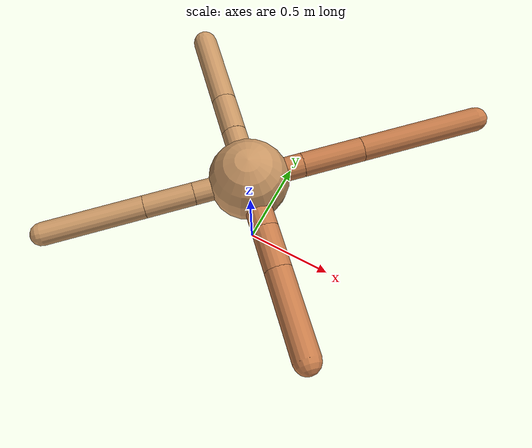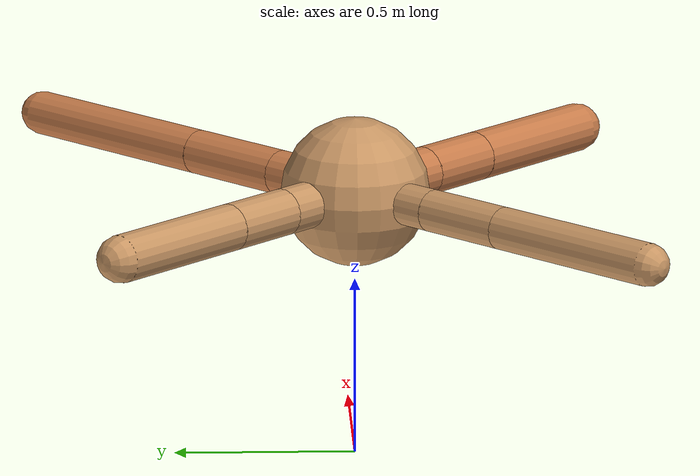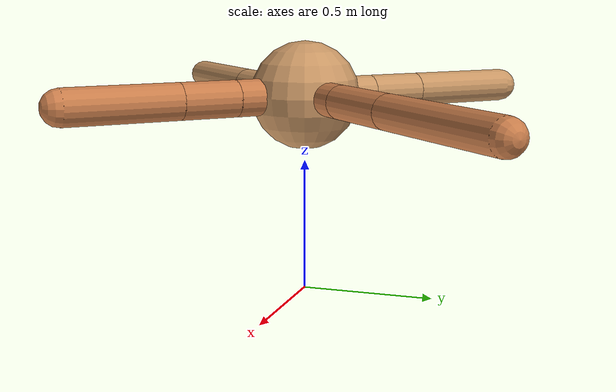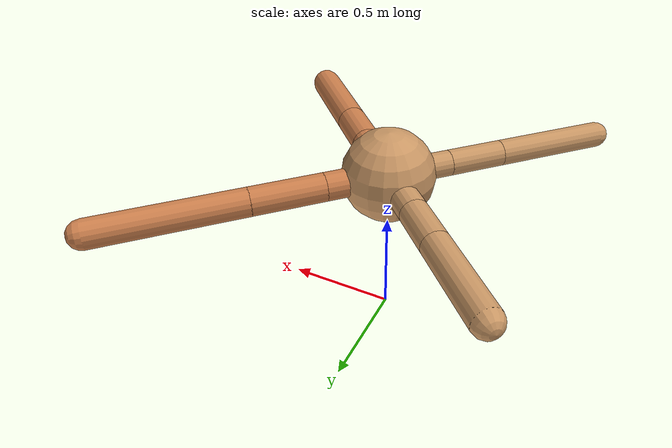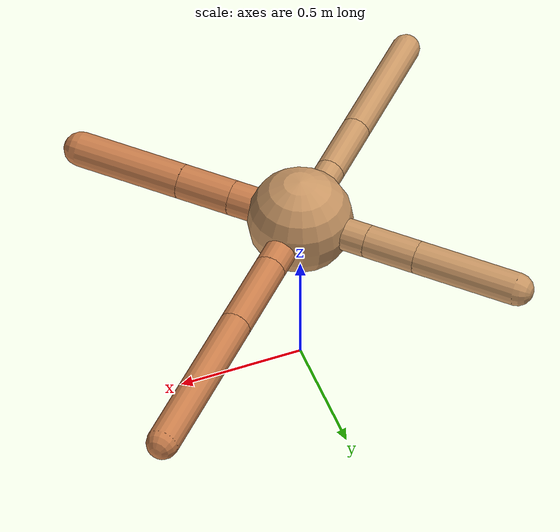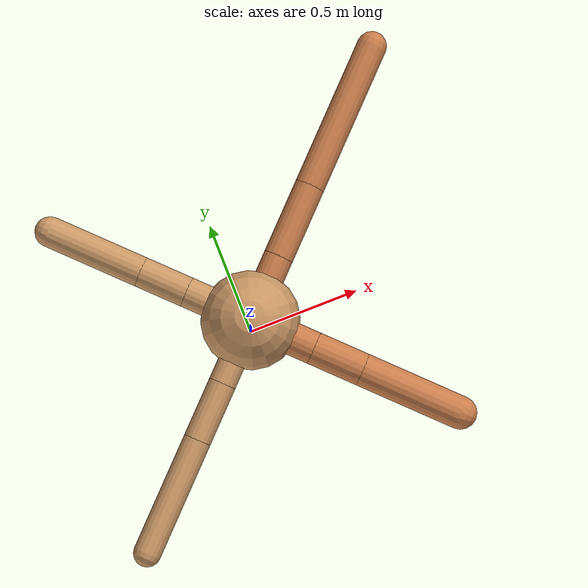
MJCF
<?xml version="1.0" ?>
<mujoco model="ant">

	<compiler angle="degree" coordinate="local" inertiafromgeom="true"/>

	<option integrator="RK4" timestep="0.01"/>

	<custom>

		<numeric data="0.0 0.0 0.55 1.0 0.0 0.0 0.0 0.0 1.0 0.0 -1.0 0.0 -1.0 0.0 1.0" name="init_qpos"/>

	</custom>

	<default>

		<joint armature="1" damping="1" limited="true"/>

		<geom conaffinity="0" condim="3" density="5.0" friction="1.5 0.1 0.1" margin="0.01" rgba="0.8 0.6 0.4 1"/>

	</default>

	<worldbody>

		<body name="torso" pos="0 0 0.75">

			<geom name="torso_geom" pos="0 0 0" size="0.20423514452338165" type="sphere"/>

			<!--joint armature="0" damping="0" limited="false" margin="0.01" name="root" pos="0 0 0" type="free"/-->

			<body name="front_left_leg" pos="0 0 0">

				<geom fromto="0 0 0 0.2 0.2 0" name="aux_1_geom" size="0.062073718661820626" type="capsule" rgba=".8 .5 .3 1"/>

				<body name="aux_1" pos="0.2 0.2 0">

					<joint axis="0 0 1" name="hip_1" pos="0.0 0.0 0.0" range="-40 40" type="hinge"/>

					<geom fromto="0 0 0 0.22439775933122671 0.22439775933122671 0" name="left_leg_geom" size="0.062073718661820626" type="capsule" rgba=".8 .5 .3 1"/>

					<body pos="0.22439775933122671 0.22439775933122671 0" name="front_left_foot">

						<joint axis="-1 1 0" name="ankle_1" pos="0.0 0.0 0.0" range="30 100" type="hinge"/>

						<geom fromto="0 0 0 0.44879551866245343 0.44879551866245343 0" name="left_ankle_geom" size="0.062073718661820626" type="capsule" rgba=".8 .5 .3 1"/>

					</body>

				</body>

			</body>

			<body name="front_right_leg" pos="0 0 0">

				<geom fromto="0 0 0 -0.2 0.2 0" name="aux_2_geom" size="0.06350963102792603" type="capsule"/>

				<body name="aux_2" pos="-0.2 0.2 0">

					<joint axis="0 0 1" name="hip_2" pos="0.0 0.0 0.0" range="-40 40" type="hinge"/>

					<geom fromto="0 0 0 -0.14449353251523936 0.14449353251523936 0" name="right_leg_geom" size="0.06350963102792603" type="capsule"/>

					<body pos="-0.14449353251523936 0.14449353251523936 0" name="front_right_foot">

						<joint axis="1 1 0" name="ankle_2" pos="0.0 0.0 0.0" range="-100 -30" type="hinge"/>

						<geom fromto="0 0 0 -0.2889870650304787 0.2889870650304787 0" name="right_ankle_geom" size="0.06350963102792603" type="capsule"/>

					</body>

				</body>

			</body>

			<body name="left_back_leg" pos="0 0 0">

				<geom fromto="0 0 0 -0.2 -0.2 0" name="aux_3_geom" size="0.05737921639458882" type="capsule"/>

				<body name="aux_3" pos="-0.2 -0.2 0">

					<joint axis="0 0 1" name="hip_3" pos="0.0 0.0 0.0" range="-40 40" type="hinge"/>

					<geom fromto="0 0 0 -0.1765879563909758 -0.1765879563909758 0" name="back_leg_geom" size="0.05737921639458882" type="capsule"/>

					<body pos="-0.1765879563909758 -0.1765879563909758 0" name="left_back_foot">

						<joint axis="-1 1 0" name="ankle_3" pos="0.0 0.0 0.0" range="-100 -30" type="hinge"/>

						<geom fromto="0 0 0 -0.3531759127819516 -0.3531759127819516 0" name="third_ankle_geom" size="0.05737921639458882" type="capsule"/>

					</body>

				</body>

			</body>

			<body name="right_back_leg" pos="0 0 0">

				<geom fromto="0 0 0 0.2 -0.2 0" name="aux_4_geom" size="0.0685126736830245" type="capsule" rgba=".8 .5 .3 1"/>

				<body name="aux_4" pos="0.2 -0.2 0">

					<joint axis="0 0 1" name="hip_4" pos="0.0 0.0 0.0" range="-40 40" type="hinge"/>

					<geom fromto="0 0 0 0.15317685742320714 -0.15317685742320714 0" name="rightback_leg_geom" size="0.0685126736830245" type="capsule" rgba=".8 .5 .3 1"/>

					<body pos="0.15317685742320714 -0.15317685742320714 0" name="right_back_foot">

						<joint axis="1 1 0" name="ankle_4" pos="0.0 0.0 0.0" range="30 100" type="hinge"/>

						<geom fromto="0 0 0 0.30635371484641427 -0.30635371484641427 0" name="fourth_ankle_geom" size="0.0685126736830245" type="capsule" rgba=".8 .5 .3 1"/>

					</body>

				</body>

			</body>

		</body>

	</worldbody>

	<actuator>

		<motor ctrllimited="true" ctrlrange="-1.0 1.0" joint="hip_4" gear="150"/>

		<motor ctrllimited="true" ctrlrange="-1.0 1.0" joint="ankle_4" gear="150"/>

		<motor ctrllimited="true" ctrlrange="-1.0 1.0" joint="hip_1" gear="150"/>

		<motor ctrllimited="true" ctrlrange="-1.0 1.0" joint="ankle_1" gear="150"/>

		<motor ctrllimited="true" ctrlrange="-1.0 1.0" joint="hip_2" gear="150"/>

		<motor ctrllimited="true" ctrlrange="-1.0 1.0" joint="ankle_2" gear="150"/>

		<motor ctrllimited="true" ctrlrange="-1.0 1.0" joint="hip_3" gear="150"/>

		<motor ctrllimited="true" ctrlrange="-1.0 1.0" joint="ankle_3" gear="150"/>

	</actuator>

</mujoco>
